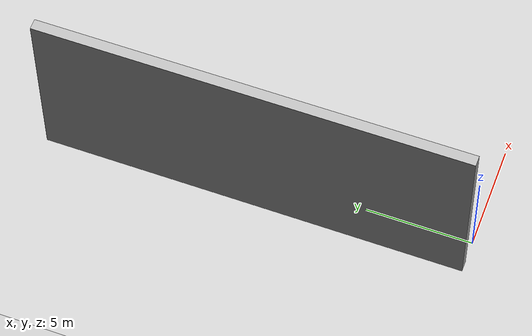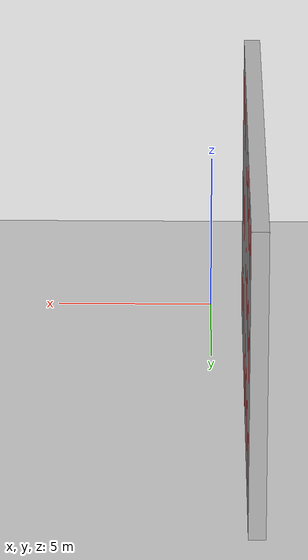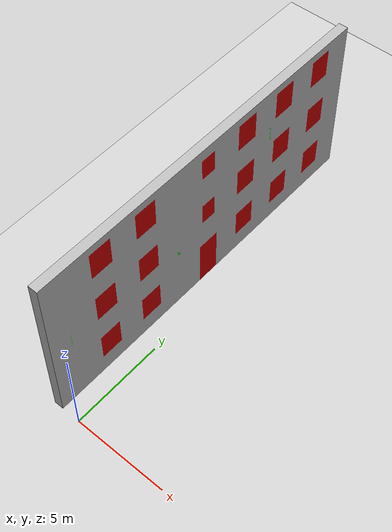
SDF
<sdf version='1.5'>
  <world name='default'>
    <light name='sundir' type='directional'>
      <cast_shadows>1</cast_shadows>
      <pose>0 0 -10 0 -0 0</pose>
      <diffuse>1.0 0.95 0.8 1</diffuse>
      <specular>0.7 0.7 0.7 1</specular>
      <attenuation>
        <range>1000</range>
        <constant>0.9</constant>
        <linear>0.01</linear>
        <quadratic>0.001</quadratic>
      </attenuation>
      <direction>-0.3 0.4 -1.0</direction>
    </light>
    <light name='skydir1' type='directional'>
      <cast_shadows>0</cast_shadows>
      <pose>10 0 -10 0 -0 0</pose>
      <diffuse>0.5 0.5 0.52 1</diffuse>
      <specular>0.1 0.1 0.1 1</specular>
      <attenuation>
        <range>1000</range>
        <constant>0.9</constant>
        <linear>0.01</linear>
        <quadratic>0.001</quadratic>
      </attenuation>
      <direction>0.6 -0.4 -0.9</direction>
    </light>
    <light name='skydir2' type='directional'>
      <cast_shadows>0</cast_shadows>
      <pose>20 0 -10 0 -0 0</pose>
      <diffuse>0.5 0.5 0.52 1</diffuse>
      <specular>0.1 0.1 0.1 1</specular>
      <attenuation>
        <range>1000</range>
        <constant>0.9</constant>
        <linear>0.01</linear>
        <quadratic>0.001</quadratic>
      </attenuation>
      <direction>0. 0.6 -0.9</direction>
    </light>
    <light name='refdir' type='directional'>
      <cast_shadows>0</cast_shadows>
      <pose>30 0 -10 0 -0 0</pose>
      <diffuse>0.52 0.5 0.5 1</diffuse>
      <specular>0.1 0.1 0.1 1</specular>
      <attenuation>
        <range>1000</range>
        <constant>0.9</constant>
        <linear>0.01</linear>
        <quadratic>0.001</quadratic>
      </attenuation>
      <direction>-0.6 -0.5 0.8</direction>
    </light>
<model name='ground_plane'>
      <static>1</static>
      <link name='link'>
        <collision name='collision'>
          <geometry>
            <plane>
              <normal>0 0 1</normal>
              <size>100 100</size>
            </plane>
          </geometry>
          <surface>
            <friction>
              <ode>
                <mu>100</mu>
                <mu2>50</mu2>
              </ode>
            </friction>
            <bounce/>
            <contact>
              <ode/>
            </contact>
          </surface>
          <max_contacts>10</max_contacts>
        </collision>
        <visual name='visual'>
          <cast_shadows>0</cast_shadows>
          <geometry>
            <plane>
              <normal>0 0 1</normal>
              <size>100 100</size>
            </plane>
          </geometry>
        </visual>
        <velocity_decay>
          <linear>0</linear>
          <angular>0</angular>
        </velocity_decay>
        <self_collide>0</self_collide>
        <kinematic>0</kinematic>
        <gravity>1</gravity>
      </link>
    </model>
    <model name='SingleWall'>
      <pose>-1.0 10.0 0 1.57 0 1.57</pose>
      <static>1</static>
      <link name='body'>
        <visual name='visual'>
          <geometry>
            <mesh>
              <uri>model://SingleWall.dae</uri>
            </mesh>
          </geometry>
        </visual>
      </link>
    </model>
    <include>
      <uri>model://asphalt_plane</uri>
      <pose>0 10.0 0 0 0 0 </pose>
    </include>
    <scene>
      <ambient>0.45 0.5 0.45 1</ambient>
      <background>0.0 0.7 1.0 1</background>
      <shadows>1</shadows>
    </scene>
  </world>
</sdf>
